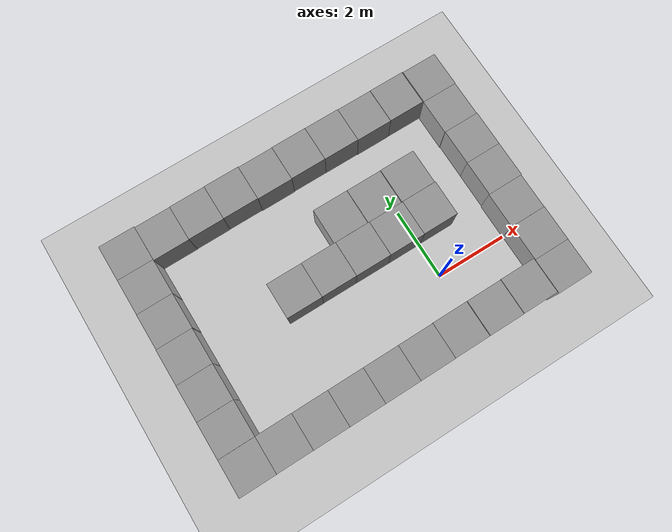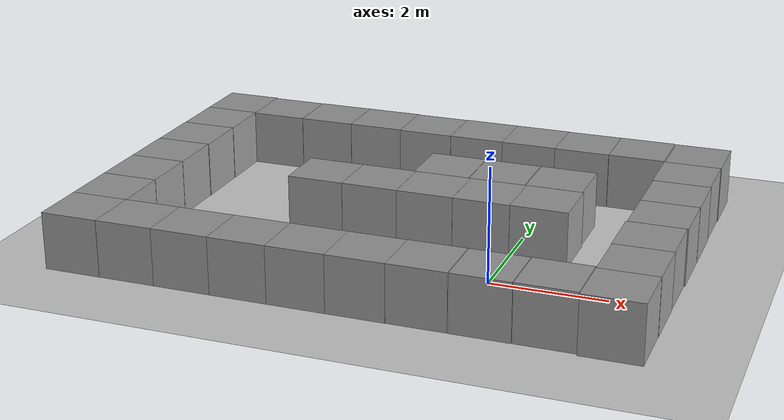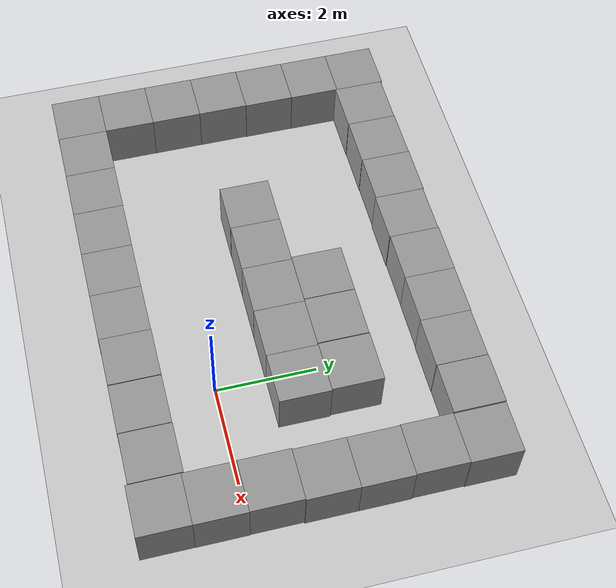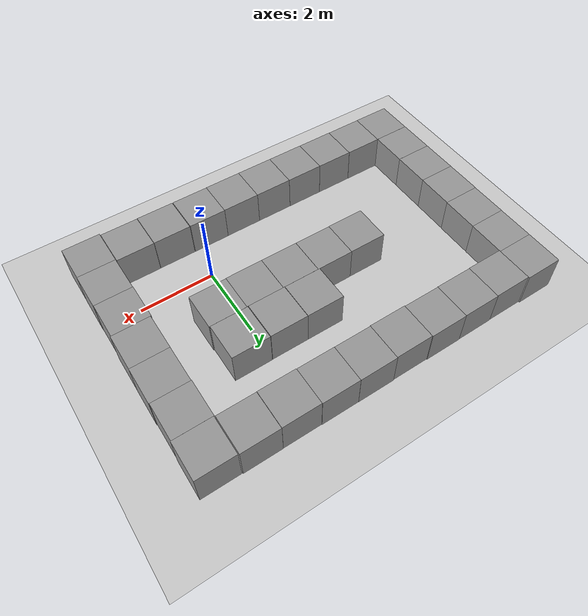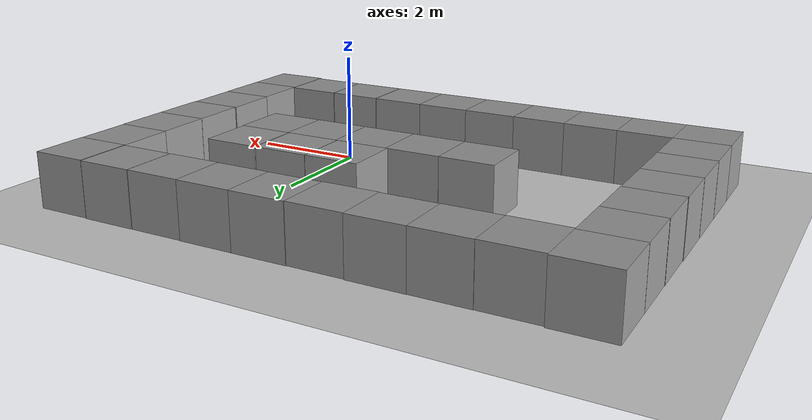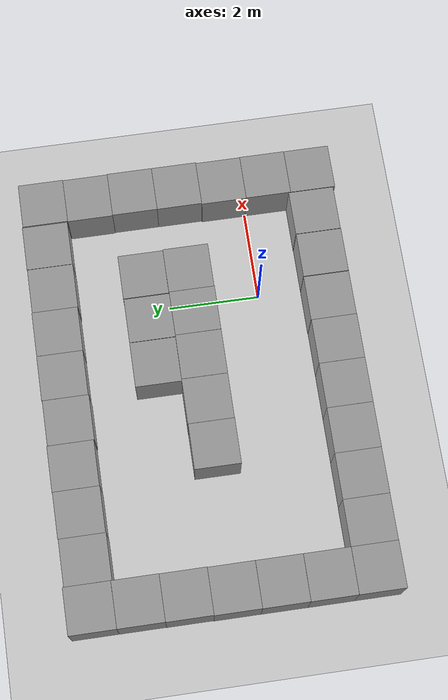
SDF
<sdf version="1.7">
 <world name="default">
  <light name="sun" type="directional">
   <pose>0 0 10 0 -0 0</pose>
   <diffuse>0.8 0.8 0.8 1</diffuse>
   <specular>0.2 0.2 0.2 1</specular>
   <attenuation>
    <range>1000</range>
    <constant>0.9</constant>
    <linear>0.01</linear>
    <quadratic>0.001</quadratic>
   </attenuation>
   <direction>-0.5 0.1 -0.9</direction>
   <spot><inner_angle>0</inner_angle><outer_angle>0</outer_angle><falloff>0</falloff></spot>
  </light>
  <model name="ground_plane">
   <static>1</static>
   <link name="link">
    <collision name="collision">
     <geometry><plane><normal>0 0 1</normal><size>100 100</size></plane></geometry>
     <surface><friction><ode><mu>100</mu><mu2>50</mu2></ode></friction></surface>
    </collision>
    <visual name="visual">
     <cast_shadows>0</cast_shadows>
     <geometry><plane><normal>0 0 1</normal><size>100 100</size></plane></geometry>
     <material>
      <script><uri>file://media/materials/scripts/gazebo.material</uri><name>Gazebo/Grey</name></script>
     </material>
    </visual>
   </link>
  </model>
  <gravity>0 0 -9.8</gravity>
  <magnetic_field>6e-06 2.3e-05 -4.2e-05</magnetic_field>
  <atmosphere type="adiabatic"/>
  <physics type="ode">
   <max_step_size>0.001</max_step_size>
   <real_time_factor>1</real_time_factor>
   <real_time_update_rate>1000</real_time_update_rate>
  </physics>
  <scene><ambient>0.4 0.4 0.4 1</ambient><background>0.7 0.7 0.7 1</background><shadows>1</shadows></scene>
  <audio><device>default</device></audio>
  <spherical_coordinates>
   <surface_model>EARTH_WGS84</surface_model>
   <latitude_deg>0</latitude_deg>
   <longitude_deg>0</longitude_deg>
   <elevation>0</elevation>
   <heading_deg>0</heading_deg>
  </spherical_coordinates>
  <model name="unit_box">
   <pose>0.484364 -1.47053 0.499995 0 1e-05 0</pose>
   <link name="link">
    <inertial>
     <mass>1</mass>
     <inertia>
      <ixx>0.166667</ixx>
      <ixy>0</ixy>
      <ixz>0</ixz>
      <iyy>0.166667</iyy>
      <iyz>0</iyz>
      <izz>0.166667</izz>
     </inertia>
    </inertial>
    <collision name="collision"><geometry><box><size>1 1 1</size></box></geometry></collision>
    <visual name="visual">
     <geometry><box><size>1 1 1</size></box></geometry>
     <material>
      <script><name>Gazebo/Grey</name><uri>file://media/materials/scripts/gazebo.material</uri></script>
     </material>
    </visual>
   </link>
  </model>
  <model name="unit_box_0">
   <pose>0.543141 1.49626 0.499995 -1e-05 -0 -0.000961</pose>
   <link name="link">
    <inertial>
     <mass>1</mass>
     <inertia>
      <ixx>0.166667</ixx>
      <ixy>0</ixy>
      <ixz>0</ixz>
      <iyy>0.166667</iyy>
      <iyz>0</iyz>
      <izz>0.166667</izz>
     </inertia>
    </inertial>
    <collision name="collision"><geometry><box><size>1 1 1</size></box></geometry></collision>
    <visual name="visual">
     <geometry><box><size>1 1 1</size></box></geometry>
     <material>
      <script><name>Gazebo/Grey</name><uri>file://media/materials/scripts/gazebo.material</uri></script>
     </material>
    </visual>
   </link>
  </model>
  <model name="unit_box_1">
   <pose>0.522208 2.49674 0.499995 0 -1e-05 -4.1e-05</pose>
   <link name="link">
    <inertial>
     <mass>1</mass>
     <inertia>
      <ixx>0.166667</ixx>
      <ixy>0</ixy>
      <ixz>0</ixz>
      <iyy>0.166667</iyy>
      <iyz>0</iyz>
      <izz>0.166667</izz>
     </inertia>
    </inertial>
    <collision name="collision"><geometry><box><size>1 1 1</size></box></geometry></collision>
    <visual name="visual">
     <geometry><box><size>1 1 1</size></box></geometry>
     <material>
      <script><name>Gazebo/Grey</name><uri>file://media/materials/scripts/gazebo.material</uri></script>
     </material>
    </visual>
   </link>
  </model>
  <model name="unit_box_2">
   <pose>-0.456944 1.49025 0.499995 0 1e-05 -0.000839</pose>
   <link name="link">
    <inertial>
     <mass>1</mass>
     <inertia>
      <ixx>0.166667</ixx>
      <ixy>0</ixy>
      <ixz>0</ixz>
      <iyy>0.166667</iyy>
      <iyz>0</iyz>
      <izz>0.166667</izz>
     </inertia>
    </inertial>
    <collision name="collision"><geometry><box><size>1 1 1</size></box></geometry></collision>
    <visual name="visual">
     <geometry><box><size>1 1 1</size></box></geometry>
     <material>
      <script><name>Gazebo/Grey</name><uri>file://media/materials/scripts/gazebo.material</uri></script>
     </material>
    </visual>
   </link>
  </model>
  <model name="unit_box_3">
   <pose>-1.45765 1.49171 0.499995 -0 1e-05 -0.002248</pose>
   <link name="link">
    <inertial>
     <mass>1</mass>
     <inertia>
      <ixx>0.166667</ixx>
      <ixy>0</ixy>
      <ixz>0</ixz>
      <iyy>0.166667</iyy>
      <iyz>0</iyz>
      <izz>0.166667</izz>
     </inertia>
    </inertial>
    <collision name="collision"><geometry><box><size>1 1 1</size></box></geometry></collision>
    <visual name="visual">
     <geometry><box><size>1 1 1</size></box></geometry>
     <material>
      <script><name>Gazebo/Grey</name><uri>file://media/materials/scripts/gazebo.material</uri></script>
     </material>
    </visual>
   </link>
  </model>
  <model name="unit_box_4">
   <pose>-2.45826 1.49513 0.499995 0 1e-05 -0.002907</pose>
   <link name="link">
    <inertial>
     <mass>1</mass>
     <inertia>
      <ixx>0.166667</ixx>
      <ixy>0</ixy>
      <ixz>0</ixz>
      <iyy>0.166667</iyy>
      <iyz>0</iyz>
      <izz>0.166667</izz>
     </inertia>
    </inertial>
    <collision name="collision"><geometry><box><size>1 1 1</size></box></geometry></collision>
    <visual name="visual">
     <geometry><box><size>1 1 1</size></box></geometry>
     <material>
      <script><name>Gazebo/Grey</name><uri>file://media/materials/scripts/gazebo.material</uri></script>
     </material>
    </visual>
   </link>
  </model>
  <model name="unit_box_5">
   <pose>-3.45835 1.49377 0.499995 -1e-05 -0 -0.00278</pose>
   <link name="link">
    <inertial>
     <mass>1</mass>
     <inertia>
      <ixx>0.166667</ixx>
      <ixy>0</ixy>
      <ixz>0</ixz>
      <iyy>0.166667</iyy>
      <iyz>0</iyz>
      <izz>0.166667</izz>
     </inertia>
    </inertial>
    <collision name="collision"><geometry><box><size>1 1 1</size></box></geometry></collision>
    <visual name="visual">
     <geometry><box><size>1 1 1</size></box></geometry>
     <material>
      <script><name>Gazebo/Grey</name><uri>file://media/materials/scripts/gazebo.material</uri></script>
     </material>
    </visual>
   </link>
  </model>
  <model name="unit_box_6">
   <pose>-1.49714 2.49252 0.499995 0 1e-05 -0.002539</pose>
   <link name="link">
    <inertial>
     <mass>1</mass>
     <inertia>
      <ixx>0.166667</ixx>
      <ixy>0</ixy>
      <ixz>0</ixz>
      <iyy>0.166667</iyy>
      <iyz>0</iyz>
      <izz>0.166667</izz>
     </inertia>
    </inertial>
    <collision name="collision"><geometry><box><size>1 1 1</size></box></geometry></collision>
    <visual name="visual">
     <geometry><box><size>1 1 1</size></box></geometry>
     <material>
      <script><name>Gazebo/Grey</name><uri>file://media/materials/scripts/gazebo.material</uri></script>
     </material>
    </visual>
   </link>
  </model>
  <model name="unit_box_7">
   <pose>-0.490815 2.49029 0.499995 0 -1e-05 -0.000806</pose>
   <link name="link">
    <inertial>
     <mass>1</mass>
     <inertia>
      <ixx>0.166667</ixx>
      <ixy>0</ixy>
      <ixz>0</ixz>
      <iyy>0.166667</iyy>
      <iyz>0</iyz>
      <izz>0.166667</izz>
     </inertia>
    </inertial>
    <collision name="collision"><geometry><box><size>1 1 1</size></box></geometry></collision>
    <visual name="visual">
     <geometry><box><size>1 1 1</size></box></geometry>
     <material>
      <script><name>Gazebo/Grey</name><uri>file://media/materials/scripts/gazebo.material</uri></script>
     </material>
    </visual>
   </link>
  </model>
  <model name="unit_box_8">
   <pose>-2.51463 4.49803 0.499995 0 1e-05 0.000481</pose>
   <link name="link">
    <inertial>
     <mass>1</mass>
     <inertia>
      <ixx>0.166667</ixx>
      <ixy>0</ixy>
      <ixz>0</ixz>
      <iyy>0.166667</iyy>
      <iyz>0</iyz>
      <izz>0.166667</izz>
     </inertia>
    </inertial>
    <collision name="collision"><geometry><box><size>1 1 1</size></box></geometry></collision>
    <visual name="visual">
     <geometry><box><size>1 1 1</size></box></geometry>
     <material>
      <script><name>Gazebo/Grey</name><uri>file://media/materials/scripts/gazebo.material</uri></script>
     </material>
    </visual>
   </link>
  </model>
  <model name="unit_box_9">
   <pose>-1.51436 4.50965 0.499995 0 -1e-05 -9.1e-05</pose>
   <link name="link">
    <inertial>
     <mass>1</mass>
     <inertia>
      <ixx>0.166667</ixx>
      <ixy>0</ixy>
      <ixz>0</ixz>
      <iyy>0.166667</iyy>
      <iyz>0</iyz>
      <izz>0.166667</izz>
     </inertia>
    </inertial>
    <collision name="collision"><geometry><box><size>1 1 1</size></box></geometry></collision>
    <visual name="visual">
     <geometry><box><size>1 1 1</size></box></geometry>
     <material>
      <script><name>Gazebo/Grey</name><uri>file://media/materials/scripts/gazebo.material</uri></script>
     </material>
    </visual>
   </link>
  </model>
  <model name="unit_box_10">
   <pose>-0.514338 4.50647 0.499995 0 1e-05 -0.000113</pose>
   <link name="link">
    <inertial>
     <mass>1</mass>
     <inertia>
      <ixx>0.166667</ixx>
      <ixy>0</ixy>
      <ixz>0</ixz>
      <iyy>0.166667</iyy>
      <iyz>0</iyz>
      <izz>0.166667</izz>
     </inertia>
    </inertial>
    <collision name="collision"><geometry><box><size>1 1 1</size></box></geometry></collision>
    <visual name="visual">
     <geometry><box><size>1 1 1</size></box></geometry>
     <material>
      <script><name>Gazebo/Grey</name><uri>file://media/materials/scripts/gazebo.material</uri></script>
     </material>
    </visual>
   </link>
  </model>
  <model name="unit_box_11">
   <pose>0.48567 4.49682 0.499995 0 1e-05 -0.000121</pose>
   <link name="link">
    <inertial>
     <mass>1</mass>
     <inertia>
      <ixx>0.166667</ixx>
      <ixy>0</ixy>
      <ixz>0</ixz>
      <iyy>0.166667</iyy>
      <iyz>0</iyz>
      <izz>0.166667</izz>
     </inertia>
    </inertial>
    <collision name="collision"><geometry><box><size>1 1 1</size></box></geometry></collision>
    <visual name="visual">
     <geometry><box><size>1 1 1</size></box></geometry>
     <material>
      <script><name>Gazebo/Grey</name><uri>file://media/materials/scripts/gazebo.material</uri></script>
     </material>
    </visual>
   </link>
  </model>
  <model name="unit_box_12">
   <pose>-3.5148 4.51206 0.499995 0 -1e-05 0.000759</pose>
   <link name="link">
    <inertial>
     <mass>1</mass>
     <inertia>
      <ixx>0.166667</ixx>
      <ixy>0</ixy>
      <ixz>0</ixz>
      <iyy>0.166667</iyy>
      <iyz>0</iyz>
      <izz>0.166667</izz>
     </inertia>
    </inertial>
    <collision name="collision"><geometry><box><size>1 1 1</size></box></geometry></collision>
    <visual name="visual">
     <geometry><box><size>1 1 1</size></box></geometry>
     <material>
      <script><name>Gazebo/Grey</name><uri>file://media/materials/scripts/gazebo.material</uri></script>
     </material>
    </visual>
   </link>
  </model>
  <model name="unit_box_13">
   <pose>-4.51489 4.50429 0.499995 0 1e-05 0.000983</pose>
   <link name="link">
    <inertial>
     <mass>1</mass>
     <inertia>
      <ixx>0.166667</ixx>
      <ixy>0</ixy>
      <ixz>0</ixz>
      <iyy>0.166667</iyy>
      <iyz>0</iyz>
      <izz>0.166667</izz>
     </inertia>
    </inertial>
    <collision name="collision"><geometry><box><size>1 1 1</size></box></geometry></collision>
    <visual name="visual">
     <geometry><box><size>1 1 1</size></box></geometry>
     <material>
      <script><name>Gazebo/Grey</name><uri>file://media/materials/scripts/gazebo.material</uri></script>
     </material>
    </visual>
   </link>
  </model>
  <model name="unit_box_14">
   <pose>-5.51498 4.49519 0.499995 -0 -1e-05 0.001143</pose>
   <link name="link">
    <inertial>
     <mass>1</mass>
     <inertia>
      <ixx>0.166667</ixx>
      <ixy>0</ixy>
      <ixz>0</ixz>
      <iyy>0.166667</iyy>
      <iyz>0</iyz>
      <izz>0.166667</izz>
     </inertia>
    </inertial>
    <collision name="collision"><geometry><box><size>1 1 1</size></box></geometry></collision>
    <visual name="visual">
     <geometry><box><size>1 1 1</size></box></geometry>
     <material>
      <script><name>Gazebo/Grey</name><uri>file://media/materials/scripts/gazebo.material</uri></script>
     </material>
    </visual>
   </link>
  </model>
  <model name="unit_box_15">
   <pose>-6.51529 4.52304 0.499995 -0 -1e-05 0.001399</pose>
   <link name="link">
    <inertial>
     <mass>1</mass>
     <inertia>
      <ixx>0.166667</ixx>
      <ixy>0</ixy>
      <ixz>0</ixz>
      <iyy>0.166667</iyy>
      <iyz>0</iyz>
      <izz>0.166667</izz>
     </inertia>
    </inertial>
    <collision name="collision"><geometry><box><size>1 1 1</size></box></geometry></collision>
    <visual name="visual">
     <geometry><box><size>1 1 1</size></box></geometry>
     <material>
      <script><name>Gazebo/Grey</name><uri>file://media/materials/scripts/gazebo.material</uri></script>
     </material>
    </visual>
   </link>
  </model>
  <model name="unit_box_16">
   <pose>-6.51531 3.52301 0.5 0 -0 0.001346</pose>
   <link name="link">
    <inertial>
     <mass>1</mass>
     <inertia>
      <ixx>0.166667</ixx>
      <ixy>0</ixy>
      <ixz>0</ixz>
      <iyy>0.166667</iyy>
      <iyz>0</iyz>
      <izz>0.166667</izz>
     </inertia>
    </inertial>
    <collision name="collision"><geometry><box><size>1 1 1</size></box></geometry></collision>
    <visual name="visual">
     <geometry><box><size>1 1 1</size></box></geometry>
     <material>
      <script><name>Gazebo/Grey</name><uri>file://media/materials/scripts/gazebo.material</uri></script>
     </material>
    </visual>
   </link>
  </model>
  <model name="unit_box_17">
   <pose>-6.51876 2.52299 0.5 0 -0 0.00132</pose>
   <link name="link">
    <inertial>
     <mass>1</mass>
     <inertia>
      <ixx>0.166667</ixx>
      <ixy>0</ixy>
      <ixz>0</ixz>
      <iyy>0.166667</iyy>
      <iyz>0</iyz>
      <izz>0.166667</izz>
     </inertia>
    </inertial>
    <collision name="collision"><geometry><box><size>1 1 1</size></box></geometry></collision>
    <visual name="visual">
     <geometry><box><size>1 1 1</size></box></geometry>
     <material>
      <script><name>Gazebo/Grey</name><uri>file://media/materials/scripts/gazebo.material</uri></script>
     </material>
    </visual>
   </link>
  </model>
  <model name="unit_box_18">
   <pose>-6.52605 1.52296 0.5 0 -0 0.001301</pose>
   <link name="link">
    <inertial>
     <mass>1</mass>
     <inertia>
      <ixx>0.166667</ixx>
      <ixy>0</ixy>
      <ixz>0</ixz>
      <iyy>0.166667</iyy>
      <iyz>0</iyz>
      <izz>0.166667</izz>
     </inertia>
    </inertial>
    <collision name="collision"><geometry><box><size>1 1 1</size></box></geometry></collision>
    <visual name="visual">
     <geometry><box><size>1 1 1</size></box></geometry>
     <material>
      <script><name>Gazebo/Grey</name><uri>file://media/materials/scripts/gazebo.material</uri></script>
     </material>
    </visual>
   </link>
  </model>
  <model name="unit_box_19">
   <pose>-6.52725 0.522811 0.499995 -0 -1e-05 0.000998</pose>
   <link name="link">
    <inertial>
     <mass>1</mass>
     <inertia>
      <ixx>0.166667</ixx>
      <ixy>0</ixy>
      <ixz>0</ixz>
      <iyy>0.166667</iyy>
      <iyz>0</iyz>
      <izz>0.166667</izz>
     </inertia>
    </inertial>
    <collision name="collision"><geometry><box><size>1 1 1</size></box></geometry></collision>
    <visual name="visual">
     <geometry><box><size>1 1 1</size></box></geometry>
     <material>
      <script><name>Gazebo/Grey</name><uri>file://media/materials/scripts/gazebo.material</uri></script>
     </material>
    </visual>
   </link>
  </model>
  <model name="unit_box_20">
   <pose>-6.52841 -0.477375 0.499995 -1e-05 -0 0.000636</pose>
   <link name="link">
    <inertial>
     <mass>1</mass>
     <inertia>
      <ixx>0.166667</ixx>
      <ixy>0</ixy>
      <ixz>0</ixz>
      <iyy>0.166667</iyy>
      <iyz>0</iyz>
      <izz>0.166667</izz>
     </inertia>
    </inertial>
    <collision name="collision"><geometry><box><size>1 1 1</size></box></geometry></collision>
    <visual name="visual">
     <geometry><box><size>1 1 1</size></box></geometry>
     <material>
      <script><name>Gazebo/Grey</name><uri>file://media/materials/scripts/gazebo.material</uri></script>
     </material>
    </visual>
   </link>
  </model>
  <model name="unit_box_21">
   <pose>-6.52803 -1.47771 0.5 0 -0 0.0001</pose>
   <link name="link">
    <inertial>
     <mass>1</mass>
     <inertia>
      <ixx>0.166667</ixx>
      <ixy>0</ixy>
      <ixz>0</ixz>
      <iyy>0.166667</iyy>
      <iyz>0</iyz>
      <izz>0.166667</izz>
     </inertia>
    </inertial>
    <collision name="collision"><geometry><box><size>1 1 1</size></box></geometry></collision>
    <visual name="visual">
     <geometry><box><size>1 1 1</size></box></geometry>
     <material>
      <script><name>Gazebo/Grey</name><uri>file://media/materials/scripts/gazebo.material</uri></script>
     </material>
    </visual>
   </link>
  </model>
  <model name="unit_box_22">
   <pose>-5.52803 -1.47439 0.499995 1e-05 -0 9.9e-05</pose>
   <link name="link">
    <inertial>
     <mass>1</mass>
     <inertia>
      <ixx>0.166667</ixx>
      <ixy>0</ixy>
      <ixz>0</ixz>
      <iyy>0.166667</iyy>
      <iyz>0</iyz>
      <izz>0.166667</izz>
     </inertia>
    </inertial>
    <collision name="collision"><geometry><box><size>1 1 1</size></box></geometry></collision>
    <visual name="visual">
     <geometry><box><size>1 1 1</size></box></geometry>
     <material>
      <script><name>Gazebo/Grey</name><uri>file://media/materials/scripts/gazebo.material</uri></script>
     </material>
    </visual>
   </link>
  </model>
  <model name="unit_box_23">
   <pose>-4.52794 -1.47682 0.499995 0 -1e-05 0.000228</pose>
   <link name="link">
    <inertial>
     <mass>1</mass>
     <inertia>
      <ixx>0.166667</ixx>
      <ixy>0</ixy>
      <ixz>0</ixz>
      <iyy>0.166667</iyy>
      <iyz>0</iyz>
      <izz>0.166667</izz>
     </inertia>
    </inertial>
    <collision name="collision"><geometry><box><size>1 1 1</size></box></geometry></collision>
    <visual name="visual">
     <geometry><box><size>1 1 1</size></box></geometry>
     <material>
      <script><name>Gazebo/Grey</name><uri>file://media/materials/scripts/gazebo.material</uri></script>
     </material>
    </visual>
   </link>
  </model>
  <model name="unit_box_24">
   <pose>-3.52781 -1.47805 0.499995 0 1e-05 0.000456</pose>
   <link name="link">
    <inertial>
     <mass>1</mass>
     <inertia>
      <ixx>0.166667</ixx>
      <ixy>0</ixy>
      <ixz>0</ixz>
      <iyy>0.166667</iyy>
      <iyz>0</iyz>
      <izz>0.166667</izz>
     </inertia>
    </inertial>
    <collision name="collision"><geometry><box><size>1 1 1</size></box></geometry></collision>
    <visual name="visual">
     <geometry><box><size>1 1 1</size></box></geometry>
     <material>
      <script><name>Gazebo/Grey</name><uri>file://media/materials/scripts/gazebo.material</uri></script>
     </material>
    </visual>
   </link>
  </model>
  <model name="unit_box_25">
   <pose>-2.52773 -1.47837 0.499995 1e-05 -0 0.000595</pose>
   <link name="link">
    <inertial>
     <mass>1</mass>
     <inertia>
      <ixx>0.166667</ixx>
      <ixy>0</ixy>
      <ixz>0</ixz>
      <iyy>0.166667</iyy>
      <iyz>0</iyz>
      <izz>0.166667</izz>
     </inertia>
    </inertial>
    <collision name="collision"><geometry><box><size>1 1 1</size></box></geometry></collision>
    <visual name="visual">
     <geometry><box><size>1 1 1</size></box></geometry>
     <material>
      <script><name>Gazebo/Grey</name><uri>file://media/materials/scripts/gazebo.material</uri></script>
     </material>
    </visual>
   </link>
  </model>
  <model name="unit_box_26">
   <pose>-1.5277 -1.47675 0.499995 0 -1e-05 0.000633</pose>
   <link name="link">
    <inertial>
     <mass>1</mass>
     <inertia>
      <ixx>0.166667</ixx>
      <ixy>0</ixy>
      <ixz>0</ixz>
      <iyy>0.166667</iyy>
      <iyz>0</iyz>
      <izz>0.166667</izz>
     </inertia>
    </inertial>
    <collision name="collision"><geometry><box><size>1 1 1</size></box></geometry></collision>
    <visual name="visual">
     <geometry><box><size>1 1 1</size></box></geometry>
     <material>
      <script><name>Gazebo/Grey</name><uri>file://media/materials/scripts/gazebo.material</uri></script>
     </material>
    </visual>
   </link>
  </model>
  <model name="unit_box_27">
   <pose>-0.527629 -1.47041 0.499995 0 1e-05 0.000528</pose>
   <link name="link">
    <inertial>
     <mass>1</mass>
     <inertia>
      <ixx>0.166667</ixx>
      <ixy>0</ixy>
      <ixz>0</ixz>
      <iyy>0.166667</iyy>
      <iyz>0</iyz>
      <izz>0.166667</izz>
     </inertia>
    </inertial>
    <collision name="collision"><geometry><box><size>1 1 1</size></box></geometry></collision>
    <visual name="visual">
     <geometry><box><size>1 1 1</size></box></geometry>
     <material>
      <script><name>Gazebo/Grey</name><uri>file://media/materials/scripts/gazebo.material</uri></script>
     </material>
    </visual>
   </link>
  </model>
  <model name="unit_box_28">
   <pose>1.49175 -1.46508 0.499995 0 1e-05 0</pose>
   <link name="link">
    <inertial>
     <mass>1</mass>
     <inertia>
      <ixx>0.166667</ixx>
      <ixy>0</ixy>
      <ixz>0</ixz>
      <iyy>0.166667</iyy>
      <iyz>0</iyz>
      <izz>0.166667</izz>
     </inertia>
    </inertial>
    <collision name="collision"><geometry><box><size>1 1 1</size></box></geometry></collision>
    <visual name="visual">
     <geometry><box><size>1 1 1</size></box></geometry>
     <material>
      <script><name>Gazebo/Grey</name><uri>file://media/materials/scripts/gazebo.material</uri></script>
     </material>
    </visual>
   </link>
  </model>
  <model name="unit_box_29">
   <pose>2.50112 -1.51264 0.499995 1e-05 -0 0.001094</pose>
   <link name="link">
    <inertial>
     <mass>1</mass>
     <inertia>
      <ixx>0.166667</ixx>
      <ixy>0</ixy>
      <ixz>0</ixz>
      <iyy>0.166667</iyy>
      <iyz>0</iyz>
      <izz>0.166667</izz>
     </inertia>
    </inertial>
    <collision name="collision"><geometry><box><size>1 1 1</size></box></geometry></collision>
    <visual name="visual">
     <geometry><box><size>1 1 1</size></box></geometry>
     <material>
      <script><name>Gazebo/Grey</name><uri>file://media/materials/scripts/gazebo.material</uri></script>
     </material>
    </visual>
   </link>
  </model>
  <model name="unit_box_30">
   <pose>2.5031 -0.512629 0.499995 0 1e-05 0.001092</pose>
   <link name="link">
    <inertial>
     <mass>1</mass>
     <inertia>
      <ixx>0.166667</ixx>
      <ixy>0</ixy>
      <ixz>0</ixz>
      <iyy>0.166667</iyy>
      <iyz>0</iyz>
      <izz>0.166667</izz>
     </inertia>
    </inertial>
    <collision name="collision"><geometry><box><size>1 1 1</size></box></geometry></collision>
    <visual name="visual">
     <geometry><box><size>1 1 1</size></box></geometry>
     <material>
      <script><name>Gazebo/Grey</name><uri>file://media/materials/scripts/gazebo.material</uri></script>
     </material>
    </visual>
   </link>
  </model>
  <model name="unit_box_31">
   <pose>2.49536 0.487399 0.5 0 -0 0.001129</pose>
   <link name="link">
    <inertial>
     <mass>1</mass>
     <inertia>
      <ixx>0.166667</ixx>
      <ixy>0</ixy>
      <ixz>0</ixz>
      <iyy>0.166667</iyy>
      <iyz>0</iyz>
      <izz>0.166667</izz>
     </inertia>
    </inertial>
    <collision name="collision"><geometry><box><size>1 1 1</size></box></geometry></collision>
    <visual name="visual">
     <geometry><box><size>1 1 1</size></box></geometry>
     <material>
      <script><name>Gazebo/Grey</name><uri>file://media/materials/scripts/gazebo.material</uri></script>
     </material>
    </visual>
   </link>
  </model>
  <model name="unit_box_32">
   <pose>2.51401 1.48744 0.5 0 -0 0.001101</pose>
   <link name="link">
    <inertial>
     <mass>1</mass>
     <inertia>
      <ixx>0.166667</ixx>
      <ixy>0</ixy>
      <ixz>0</ixz>
      <iyy>0.166667</iyy>
      <iyz>0</iyz>
      <izz>0.166667</izz>
     </inertia>
    </inertial>
    <collision name="collision"><geometry><box><size>1 1 1</size></box></geometry></collision>
    <visual name="visual">
     <geometry><box><size>1 1 1</size></box></geometry>
     <material>
      <script><name>Gazebo/Grey</name><uri>file://media/materials/scripts/gazebo.material</uri></script>
     </material>
    </visual>
   </link>
  </model>
  <model name="unit_box_33">
   <pose>2.51463 2.48747 0.5 0 -0 0.001037</pose>
   <link name="link">
    <inertial>
     <mass>1</mass>
     <inertia>
      <ixx>0.166667</ixx>
      <ixy>0</ixy>
      <ixz>0</ixz>
      <iyy>0.166667</iyy>
      <iyz>0</iyz>
      <izz>0.166667</izz>
     </inertia>
    </inertial>
    <collision name="collision"><geometry><box><size>1 1 1</size></box></geometry></collision>
    <visual name="visual">
     <geometry><box><size>1 1 1</size></box></geometry>
     <material>
      <script><name>Gazebo/Grey</name><uri>file://media/materials/scripts/gazebo.material</uri></script>
     </material>
    </visual>
   </link>
  </model>
  <model name="unit_box_34">
   <pose>2.50144 3.48748 0.499995 0 -1e-05 0.001032</pose>
   <link name="link">
    <inertial>
     <mass>1</mass>
     <inertia>
      <ixx>0.166667</ixx>
      <ixy>0</ixy>
      <ixz>0</ixz>
      <iyy>0.166667</iyy>
      <iyz>0</iyz>
      <izz>0.166667</izz>
     </inertia>
    </inertial>
    <collision name="collision"><geometry><box><size>1 1 1</size></box></geometry></collision>
    <visual name="visual">
     <geometry><box><size>1 1 1</size></box></geometry>
     <material>
      <script><name>Gazebo/Grey</name><uri>file://media/materials/scripts/gazebo.material</uri></script>
     </material>
    </visual>
   </link>
  </model>
  <model name="unit_box_35">
   <pose>2.51135 4.4876 0.499995 0 -1e-05 0.001021</pose>
   <link name="link">
    <inertial>
     <mass>1</mass>
     <inertia>
      <ixx>0.166667</ixx>
      <ixy>0</ixy>
      <ixz>0</ixz>
      <iyy>0.166667</iyy>
      <iyz>0</iyz>
      <izz>0.166667</izz>
     </inertia>
    </inertial>
    <collision name="collision"><geometry><box><size>1 1 1</size></box></geometry></collision>
    <visual name="visual">
     <geometry><box><size>1 1 1</size></box></geometry>
     <material>
      <script><name>Gazebo/Grey</name><uri>file://media/materials/scripts/gazebo.material</uri></script>
     </material>
    </visual>
   </link>
  </model>
  <model name="unit_box_36">
   <pose>1.4903 4.5019 0.5 0 -0 0</pose>
   <link name="link">
    <inertial>
     <mass>1</mass>
     <inertia>
      <ixx>0.166667</ixx>
      <ixy>0</ixy>
      <ixz>0</ixz>
      <iyy>0.166667</iyy>
      <iyz>0</iyz>
      <izz>0.166667</izz>
     </inertia>
    </inertial>
    <collision name="collision"><geometry><box><size>1 1 1</size></box></geometry></collision>
    <visual name="visual">
     <geometry><box><size>1 1 1</size></box></geometry>
     <material>
      <script><name>Gazebo/Grey</name><uri>file://media/materials/scripts/gazebo.material</uri></script>
     </material>
    </visual>
   </link>
  </model>
 </world>
</sdf>
